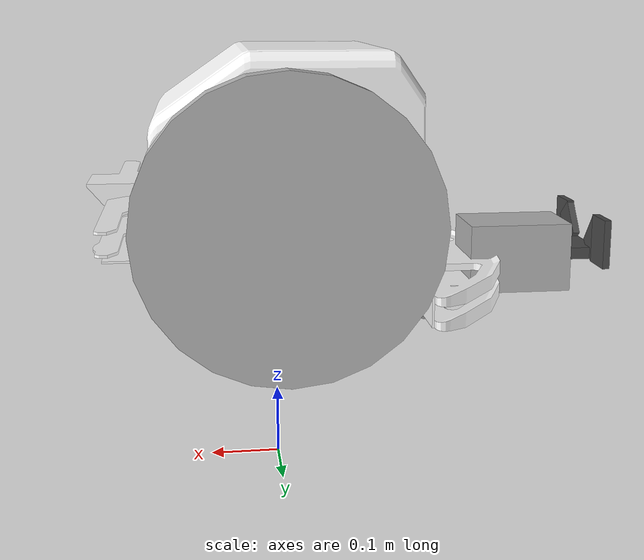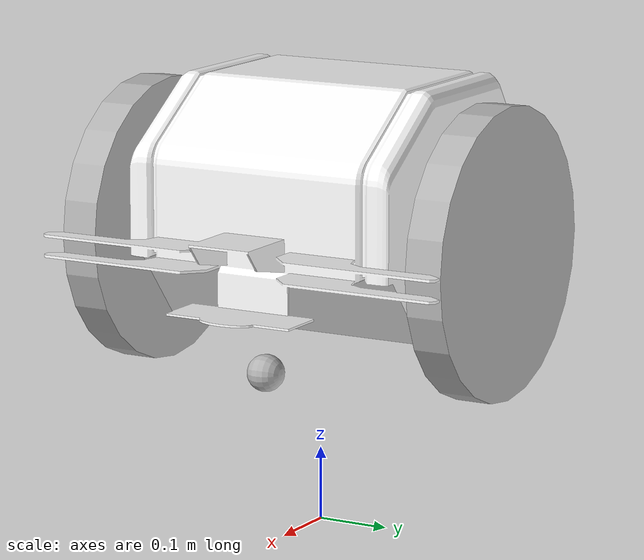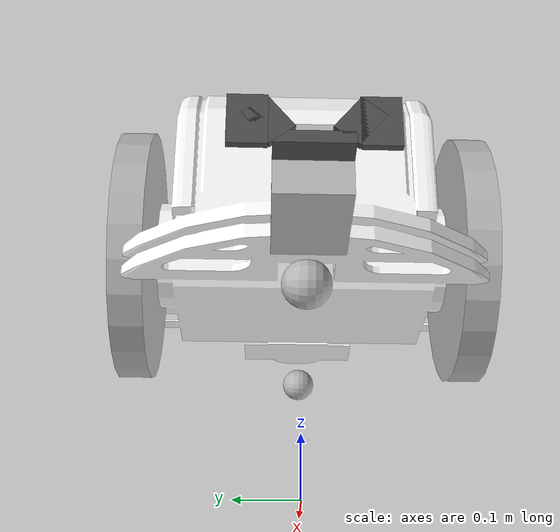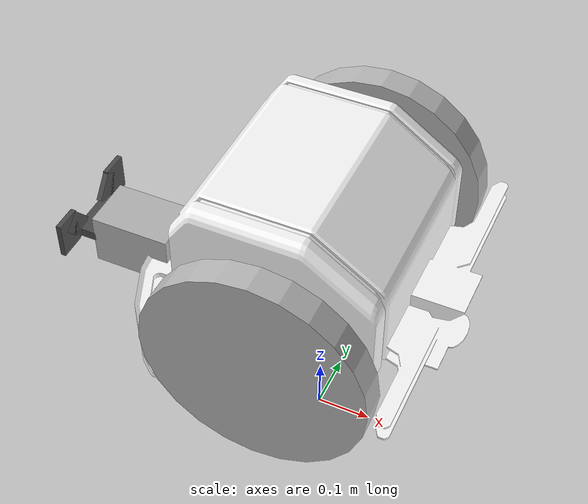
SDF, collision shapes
<?xml version='1.0' encoding='ASCII'?>
<sdf version="1.7">
    <model name="tugbot">
        <self_collide>false</self_collide>
        <pose>0 0 0.2 0 0 0</pose>
        <static>false</static>
        <!-- BASE -->
        <link name="base_link">
            <pose>0 0 0 0 0 0</pose>
            <inertial>
                <pose>-0.1 0 0.1 0 0 0</pose>
                <mass>46.2</mass>
                <inertia>
                    <ixx>1.55925</ixx>
                    <ixy>0</ixy>
                    <ixz>0</ixz>
                    <iyy>1.55925</iyy>
                    <iyz>0</iyz>
                    <izz>1.55925</izz>
                </inertia>
            </inertial>
            <collision name="base_link_collision">
                <pose>0 0 0 0 0 0</pose>
                <geometry>
                    <mesh>
                        <uri>meshes/base/tugbot_simp.stl</uri>
                    </mesh>
                </geometry>
            </collision>
            <visual name="base_link_visual">
                <pose>0 0 0 0 0 0</pose>
                <geometry>
                    <mesh>
                        <uri>meshes/base/tugbot_simp.dae</uri>
                    </mesh>
                </geometry>
            </visual>
            <visual name="movai_logo_visual">
                <pose>0 0 0 0 0 0</pose>
                <geometry>
                    <mesh>
                        <uri>meshes/base/movai_logo.dae</uri>
                    </mesh>
                </geometry>
                <material>
                    <diffuse>1.0 1.0 1.0</diffuse>
                    <pbr>
                        <metal>
                            <albedo_map>meshes/base/movai-logo.png</albedo_map>
                        </metal>
                    </pbr>
                </material>
            </visual>
            <visual name="light_link_visual">
                <pose>-0.1 0 0.1945 0 1.57079632679 0</pose>
                <geometry>
                    <mesh>
                        <scale>1.0 1.0 1.0</scale>
                        <uri>meshes/light_link/light_led.stl</uri>
                    </mesh>
                </geometry>
                <material>
                    <ambient>0.0 0.0 0 1</ambient>
                    <diffuse>0.0 0.0 0 1</diffuse>
                    <specular>0 0 0 1</specular>
                    <emissive>0 1 0 1</emissive>
                </material>
            </visual>
            <visual name="warnign_light_visual">
                <pose>-0.099 0 0.195 0 1.57079632679 0</pose>
                <geometry>
                    <mesh>
                        <scale>1.02 1.02 1.02</scale>
                        <uri>meshes/light_link/light.stl</uri>
                    </mesh>
                </geometry>
                <material>
                    <ambient>0.1 0.05 0 0.5</ambient>
                    <diffuse>1 0.5 0 0.5</diffuse>
                    <specular>1 0.5 0 0.5</specular>
                    <emissive>1 0.5 0 0.5</emissive>
                </material>
            </visual>
        </link>
        <link name="imu_link">
            <pose>0.14 0.02 0.25 0 0 -1.57</pose>
            <sensor name="imu" type="imu">
                <update_rate>30</update_rate>
                <visualize>false</visualize>
            </sensor>
        </link>
        <joint name="imu_link_joint" type="fixed">
            <child>imu_link</child>
            <parent>base_link</parent>
        </joint>
        <link name="warnign_light">
            <pose>-0.185 0 0.46 0 0 0</pose>
            <inertial>
                <pose>0 0 0 0 0 0</pose>
                <mass>0.1</mass>
                <inertia>
                    <ixx>0.000016875</ixx>
                    <ixy>0</ixy>
                    <ixz>0</ixz>
                    <iyy>0.00000001</iyy>
                    <iyz>0</iyz>
                    <izz>0.000016875</izz>
                </inertia>
            </inertial>
            <light name="warnign_light_lamp" type="spot">
                <pose>-0.04 0 0 0 1.57079632679 0</pose>
                <attenuation>
                    <range>5</range>
                    <linear>0</linear>
                    <constant>0.1</constant>
                    <quadratic>0.0025</quadratic>
                </attenuation>
                <diffuse>1 0.5 0 1</diffuse>
                <specular>1 0.5 0 1</specular>
                <spot>
                    <inner_angle>0.9</inner_angle>
                    <outer_angle>1.0</outer_angle>
                    <falloff>2.0</falloff>
                </spot>
                <direction>0 0 -1</direction>
                <cast_shadows>1</cast_shadows>
            </light>
        </link>
        <joint name="warnign_light_joint" type="revolute">
            <child>warnign_light</child>
            <parent>base_link</parent>
            <axis>
                <xyz>0 0 1</xyz>
                <limit>
                    <effort>1000</effort>
                    <velocity>20.0</velocity>
                </limit>
            </axis>
        </joint>
        <!-- SENSORS -->
        <link name="camera_front">
            <pose relative_to="base_link">0.0553 0 0.4323 0 0 0</pose>
            <sensor name="color" type="camera">
                <pose>0 0.0325 0.0125 0 0 0</pose>
                <update_rate>6</update_rate>
                <always_on>0</always_on>
                <camera>
                    <horizontal_fov>1.20427718</horizontal_fov>
                    <image>
                        <width>848</width>
                        <height>480</height>
                    </image>
                    <clip>
                        <near>0.1</near>
                        <far>50</far>
                    </clip>
                    <lens>
                        <intrinsics>
                            <fx>615.9603271484375</fx>
                            <fy>616.227294921875</fy>
                            <cx>419.83026123046875</cx>
                            <cy>245.1431427001953</cy>
                            <s>0</s>
                        </intrinsics>
                    </lens>
                </camera>
            </sensor>
            <sensor name="depth" type="depth_camera">
                <pose>0 0.0175 0.0125 0 0 0</pose>
                <update_rate>6</update_rate>
                <always_on>0</always_on>
                <camera>
                    <horizontal_fov>1.51843645</horizontal_fov>
                    <image>
                        <width>848</width>
                        <height>480</height>
                        <format>R_FLOAT32</format>
                    </image>
                    <clip>
                        <near>0.1</near>
                        <far>10</far>
                    </clip>
                    <lens>
                        <intrinsics>
                            <fx>421.61578369140625</fx>
                            <fy>421.61578369140625</fy>
                            <cx>422.2854309082031</cx>
                            <cy>236.57237243652344</cy>
                            <s>0</s>
                        </intrinsics>
                    </lens>
                </camera>
            </sensor>
        </link>
        <joint name="camera_front_joint" type="fixed">
            <child>camera_front</child>
            <parent>base_link</parent>
        </joint>
        <link name="camera_back">
            <pose relative_to="base_link">-0.241 0 0.2303 0 0 3.141592654</pose>
            <sensor name="color" type="camera">
                <pose>0 0.0325 0.0125 0 0 0</pose>
                <update_rate>6</update_rate>
                <always_on>0</always_on>
                <camera>
                    <horizontal_fov>1.20427718</horizontal_fov>
                    <image>
                        <width>848</width>
                        <height>480</height>
                    </image>
                    <clip>
                        <near>0.1</near>
                        <far>50</far>
                    </clip>
                    <lens>
                        <intrinsics>
                            <fx>615.9603271484375</fx>
                            <fy>616.227294921875</fy>
                            <cx>419.83026123046875</cx>
                            <cy>245.1431427001953</cy>
                            <s>0</s>
                        </intrinsics>
                    </lens>
                </camera>
            </sensor>
            <sensor name="depth" type="depth_camera">
                <pose>0 0.0175 0.0125 0 0 0</pose>
                <update_rate>6</update_rate>
                <always_on>0</always_on>
                <camera>
                    <horizontal_fov>1.51843645</horizontal_fov>
                    <image>
                        <width>848</width>
                        <height>480</height>
                        <format>R_FLOAT32</format>
                    </image>
                    <clip>
                        <near>0.1</near>
                        <far>10</far>
                    </clip>
                    <lens>
                        <intrinsics>
                            <fx>421.61578369140625</fx>
                            <fy>421.61578369140625</fy>
                            <cx>422.2854309082031</cx>
                            <cy>236.57237243652344</cy>
                            <s>0</s>
                        </intrinsics>
                    </lens>
                </camera>
            </sensor>
        </link>
        <joint name="camera_back_joint" type="fixed">
            <child>camera_back</child>
            <parent>base_link</parent>
        </joint>
        <link name="scan_front">
            <pose>0.221 0 0.1404 0 0 0</pose>
            <sensor name="scan_front" type="gpu_lidar">
                <update_rate>10</update_rate>
                <lidar>
                    <scan>
                        <horizontal>
                            <samples>674</samples>
                            <resolution>1</resolution>
                            <min_angle>-1.47043991089</min_angle>
                            <max_angle>1.47043991089</max_angle>
                        </horizontal>
                    </scan>
                    <range>
                        <min>0.01</min>
                        <max>5.0</max>
                        <resolution>0.01</resolution>
                    </range>
                </lidar>
            </sensor>
        </link>
        <joint name="scan_front_joint" type="fixed">
            <child>scan_front</child>
            <parent>base_link</parent>
        </joint>
        <link name="scan_back">
            <pose>-0.2075 0 0.205 0 0 3.141592654</pose>
            <sensor name="scan_back" type="gpu_lidar">
                <update_rate>5</update_rate>
                <lidar>
                    <scan>
                        <horizontal>
                            <samples>480</samples>
                            <resolution>1</resolution>
                            <min_angle>-1.47043991089</min_angle>
                            <max_angle>1.47043991089</max_angle>
                        </horizontal>
                    </scan>
                    <range>
                        <min>0.01</min>
                        <max>5.0</max>
                        <resolution>0.01</resolution>
                    </range>
                </lidar>
            </sensor>
        </link>
        <joint name="scan_back_joint" type="fixed">
            <child>scan_back</child>
            <parent>base_link</parent>
        </joint>
        <link name="scan_omni">
            <pose>-0.1855 0 0.5318 0 0 0</pose>
            <visual name="velodyne_base">
                <pose>0 0 -0.035 0 0 0</pose>
                <geometry>
                    <cylinder>
                        <radius>0.06</radius>
                        <length>0.0015</length>
                    </cylinder>
                </geometry>
            </visual>
            <visual name="velodyne_suport_1">
                <pose>-0.035 0.035 -0.08 0 0 0</pose>
                <geometry>
                    <cylinder>
                        <radius>0.005</radius>
                        <length>0.09</length>
                    </cylinder>
                </geometry>
            </visual>
            <visual name="velodyne_suport_2">
                <pose>-0.035 -0.035 -0.08 0 0 0</pose>
                <geometry>
                    <cylinder>
                        <radius>0.005</radius>
                        <length>0.09</length>
                    </cylinder>
                </geometry>
            </visual>
            <visual name="velodyne_suport_3">
                <pose>0.0495 0 -0.08 0 0 0</pose>
                <geometry>
                    <cylinder>
                        <radius>0.005</radius>
                        <length>0.09</length>
                    </cylinder>
                </geometry>
            </visual>
            <!-- Bottom cylinder of Ouster/Velodyne 3D Lidar -->
            <visual name="velodyne_base_link_visual_base">
                <pose>0 0 -0.035 0 0 0</pose>
                <geometry>
                    <mesh>
                        <scale>1 1 1</scale>
                        <uri>meshes/VLP16_base_1.dae</uri>
                    </mesh>
                </geometry>
            </visual>
            <!-- Top cylinder of Ouster/Velodyne 3D Lidar -->
            <visual name="velodyne_base_link_visual_sensor">
                <pose>0 0 -0.035 0 0 0</pose>
                <geometry>
                    <mesh>
                        <scale>1 1 1</scale>
                        <uri>meshes/VLP16_base_2.dae</uri>
                    </mesh>
                </geometry>
            </visual>
            <!-- Main cylinder of Ouster/Velodyne 3D Lidar -->
            <visual name="base_link_velodyne_visual_scan">
                <pose>0 0 -0.035 0 0 0</pose>
                <geometry>
                    <mesh>
                        <scale>1 1 1</scale>
                        <uri>meshes/VLP16_scan.dae</uri>
                    </mesh>
                </geometry>
            </visual>
            <sensor name="scan_omni" type="gpu_lidar">
                <update_rate>10</update_rate>
                <lidar>
                    <scan>
                        <horizontal>
                            <!-- Real samples value is 1800 -->
                            <samples>900</samples>
                            <resolution>1</resolution>
                            <min_angle>-3.141592654</min_angle>
                            <max_angle>3.141592654</max_angle>
                        </horizontal>
                        <vertical>
                            <samples>16</samples>
                            <resolution>1</resolution>
                            <min_angle>-0.261799388</min_angle>
                            <max_angle>0.261799388</max_angle>
                        </vertical>
                    </scan>
                    <range>
                        <min>0.2</min>
                        <max>100.0</max>
                        <resolution>0.01</resolution>
                    </range>
                </lidar>
            </sensor>
        </link>
        <joint name="scan_omni_joint" type="fixed">
            <child>scan_omni</child>
            <parent>base_link</parent>
        </joint>
        <!-- GRIPPER -->
        <link name="gripper">
            <pose>-0.35 0 0.1 0 0 0</pose>
            <inertial>
                <pose>0 0 0 0 -0 0</pose>
                <mass>1</mass>
                <inertia>
                    <ixx>0.001666667</ixx>
                    <ixy>0</ixy>
                    <ixz>0</ixz>
                    <iyy>0.001666667</iyy>
                    <iyz>0</iyz>
                    <izz>0.001666667</izz>
                </inertia>
            </inertial>
            <collision name="gripper_collision">
                <pose>-0.005 0 0 0 -0 0</pose>
                <max_contacts>5</max_contacts>
                <geometry>
                    <box>
                        <size>0.15 0.1 0.1</size>
                    </box>
                </geometry>
                <surface>
                    <contact>
                        <ode>
                            <kp>1000000.0</kp>
                            <kd>1</kd>
                            <min_depth>0.01</min_depth>
                            <max_vel>1</max_vel>
                        </ode>
                    </contact>
                    <friction>
                        <ode>
                            <mu>1.16</mu>
                            <mu2>1.16</mu2>
                        </ode>
                    </friction>
                </surface>
            </collision>
            <visual name="gripper_visual">
                <pose>0 0 0 -1.57079632679 0 0</pose>
                <geometry>
                    <mesh>
                        <scale>1 1 1</scale>
                        <uri>meshes/gripper2/gripper2.dae</uri>
                    </mesh>
                </geometry>
            </visual>
            <sensor name="sensor_contact" type="gpu_lidar">
                <pose>-0.075 0 0.035 0 0 3.141592654</pose>
                <update_rate>10</update_rate>
                <lidar>
                    <scan>
                        <horizontal>
                            <samples>3</samples>
                            <resolution>1</resolution>
                            <min_angle>-0.02</min_angle>
                            <max_angle>0.02</max_angle>
                        </horizontal>
                    </scan>
                    <range>
                        <min>0.001</min>
                        <max>0.01</max>
                        <resolution>0.001</resolution>
                    </range>
                </lidar>
            </sensor>
        </link>
        <joint name="gripper_joint" type="revolute">
            <pose>0.35 0 0.09 0 0 0</pose>
            <child>gripper</child>
            <parent>base_link</parent>
            <axis>
                <xyz>0 0 1</xyz>
                <limit>
                    <lower>-0.7</lower>
                    <upper>0.7</upper>
                    <effort>4</effort>
                    <velocity>0.5</velocity>
                </limit>
                <dynamics>
                    <friction>0.5</friction>
                </dynamics>
            </axis>
        </joint>
        <link name="gripper_hand">
            <pose>-0.463 0 0.1 0 0 0</pose>
            <inertial>
                <pose>0 0 0 0 0 0</pose>
                <mass>0.2</mass>
                <inertia>
                    <ixx>0.000016</ixx>
                    <ixy>0</ixy>
                    <ixz>0</ixz>
                    <iyy>0.000016</iyy>
                    <iyz>0</iyz>
                    <izz>0.000016</izz>
                </inertia>
            </inertial>
            <collision name="gripper_hand_collision">
                <pose>0.015 0 0.006 0 0 0</pose>
                <geometry>
                    <box>
                        <size>0.04 0.1 0.017</size>
                    </box>
                </geometry>
                <max_contacts>5</max_contacts>
                <surface>
                    <contact>
                        <ode>
                            <kp>1000000.0</kp>
                            <kd>1</kd>
                            <min_depth>0.01</min_depth>
                            <max_vel>1</max_vel>
                        </ode>
                    </contact>
                    <friction>
                        <ode>
                            <mu>1.16</mu>
                            <mu2>1.16</mu2>
                        </ode>
                    </friction>
                </surface>
            </collision>
            <visual name="gripper_hand_visual">
                <pose>0 0 0 1.570796327 0 1.570796327</pose>
                <geometry>
                    <mesh>
                        <scale>0.001 0.001 0.001</scale>
                        <uri>meshes/gripper2/gripper_hand.stl</uri>
                    </mesh>
                </geometry>
                <material>
                    <ambient>0.1 0.1 0.1 1</ambient>
                    <diffuse>0.3 0.3 0.3 1</diffuse>
                    <specular>1 1 1 1</specular>
                    <emissive>0 0 0 1</emissive>
                </material>
            </visual>
            <collision name="gripper_hand_sideL_collision">
                <pose>0 0.08 0.03 0 0 0</pose>
                <geometry>
                    <box>
                        <size>0.01 0.05 0.07</size>
                    </box>
                </geometry>
                <surface>
                    <contact>
                        <ode>
                            <kp>1000000.0</kp>
                            <kd>1</kd>
                            <min_depth>0.01</min_depth>
                            <max_vel>1</max_vel>
                        </ode>
                    </contact>
                    <friction>
                        <ode>
                            <mu>1.16</mu>
                            <mu2>1.16</mu2>
                        </ode>
                    </friction>
                </surface>
            </collision>
            <collision name="gripper_hand_sideL_slide_collision">
                <pose>0 0.055 0.03 0.9 0 0</pose>
                <geometry>
                    <box>
                        <size>0.01 0.055 0.04</size>
                    </box>
                </geometry>
                <surface>
                    <contact>
                        <ode>
                            <kp>1000000.0</kp>
                            <kd>1</kd>
                            <min_depth>0.01</min_depth>
                            <max_vel>1</max_vel>
                        </ode>
                    </contact>
                    <friction>
                        <ode>
                            <mu>0</mu>
                            <mu2>0</mu2>
                        </ode>
                    </friction>
                </surface>
            </collision>
            <collision name="gripper_hand_sideR_collision">
                <pose>0 -0.08 0.03 0 0 0</pose>
                <geometry>
                    <box>
                        <size>0.01 0.05 0.07</size>
                    </box>
                </geometry>
                <surface>
                    <contact>
                        <ode>
                            <kp>1000000.0</kp>
                            <kd>1</kd>
                            <min_depth>0.01</min_depth>
                            <max_vel>1</max_vel>
                        </ode>
                    </contact>
                    <friction>
                        <ode>
                            <mu>1.16</mu>
                            <mu2>1.16</mu2>
                        </ode>
                    </friction>
                </surface>
            </collision>
            <collision name="gripper_hand_sideR_slide_collision">
                <pose>0 -0.055 0.03 -0.9 0 0</pose>
                <geometry>
                    <box>
                        <size>0.01 0.055 0.04</size>
                    </box>
                </geometry>
                <surface>
                    <contact>
                        <ode>
                            <kp>1000000.0</kp>
                            <kd>1</kd>
                            <min_depth>0.01</min_depth>
                            <max_vel>1</max_vel>
                        </ode>
                    </contact>
                    <friction>
                        <ode>
                            <mu>0</mu>
                            <mu2>0</mu2>
                        </ode>
                    </friction>
                </surface>
            </collision>
        </link>
        <joint name="gripper_hand_joint" type="revolute">
            <pose>0.2 0 0 0 0 0</pose>
            <child>gripper_hand</child>
            <parent>gripper</parent>
            <axis>
                <xyz>0 1 0</xyz>
                <limit>
                    <lower>-0.35</lower>
                    <upper>0.1</upper>
                    <effort>100</effort>
                    <velocity>0.5</velocity>
                </limit>
            </axis>
        </joint>
        <!-- WHEELS -->
        <link name="wheel_front">
            <pose>0.145 0 0.0345 1.570796327 0 0</pose>
            <inertial>
                <pose>0 0 0 0 0 0</pose>
                <mass>0.1</mass>
                <inertia>
                    <ixx>0.0000175</ixx>
                    <ixy>0</ixy>
                    <ixz>0</ixz>
                    <iyy>0.0000175</iyy>
                    <iyz>0</iyz>
                    <izz>0.0000175</izz>
                </inertia>
            </inertial>
            <collision name="wheel_front_collision">
                <pose>0 0 0 0 0 0</pose>
                <geometry>
                    <sphere>
                        <radius>0.025</radius>
                    </sphere>
                </geometry>
                <max_contacts>2</max_contacts>
                <surface>
                    <contact>
                        <ode>
                            <kp>1000000.0</kp>
                            <kd>1</kd>
                            <min_depth>0.01</min_depth>
                            <max_vel>1</max_vel>
                        </ode>
                    </contact>
                    <friction>
                        <ode>
                            <mu>1.16</mu>
                            <mu2>1.16</mu2>
                        </ode>
                    </friction>
                </surface>
            </collision>
        </link>
        <joint name="wheel_front_joint" type="ball">
            <child>wheel_front</child>
            <parent>base_link</parent>
            <axis>
                <limit>
                    <effort>100</effort>
                </limit>
                <dynamics>
                    <spring_reference>0</spring_reference>
                    <spring_stiffness>0</spring_stiffness>
                    <damping>10</damping>
                </dynamics>
            </axis>
        </joint>
        <link name="wheel_back">
            <pose>-0.225 0 0.035 1.570796327 0 0</pose>
            <inertial>
                <pose>0 0 0 0 0 0</pose>
                <mass>0.1</mass>
                <inertia>
                    <ixx>0.0000175</ixx>
                    <ixy>0</ixy>
                    <ixz>0</ixz>
                    <iyy>0.0000175</iyy>
                    <iyz>0</iyz>
                    <izz>0.0000175</izz>
                </inertia>
            </inertial>
            <collision name="wheel_back_collision">
                <pose>0 0 0 0 0 0</pose>
                <geometry>
                    <sphere>
                        <radius>0.035</radius>
                    </sphere>
                </geometry>
                <max_contacts>2</max_contacts>
                <surface>
                    <contact>
                        <ode>
                            <kp>1000000.0</kp>
                            <kd>1</kd>
                            <min_depth>0.01</min_depth>
                            <max_vel>1</max_vel>
                        </ode>
                    </contact>
                    <friction>
                        <ode>
                            <mu>1.16</mu>
                            <mu2>1.16</mu2>
                        </ode>
                    </friction>
                </surface>
            </collision>
        </link>
        <joint name="wheel_back_joint" type="ball">
            <child>wheel_back</child>
            <parent>base_link</parent>
            <axis>
                <limit>
                    <effort>100</effort>
                </limit>
                <dynamics>
                    <spring_reference>0</spring_reference>
                    <spring_stiffness>0</spring_stiffness>
                    <damping>10</damping>
                </dynamics>
            </axis>
        </joint>
        <link name="wheel_left">
            <pose>0 0.257 0.195 -1.570796327 0 0</pose>
            <inertial>
                <pose>0 0 0 0 0 0</pose>
                <mass>0.1</mass>
                <inertia>
                    <ixx>0.0000175</ixx>
                    <ixy>0</ixy>
                    <ixz>0</ixz>
                    <iyy>0.0000175</iyy>
                    <iyz>0</iyz>
                    <izz>0.00003125</izz>
                </inertia>
            </inertial>
            <collision name="wheel_left_collision">
                <pose>0 0 0 0 0 0</pose>
                <geometry>
                    <cylinder>
                        <radius>0.195</radius>
                        <length>0.05</length>
                    </cylinder>
                </geometry>
                <max_contacts>5</max_contacts>
                <surface>
                    <contact>
                        <ode>
                            <kp>1000000.0</kp>
                            <kd>1</kd>
                            <min_depth>0.01</min_depth>
                            <max_vel>1</max_vel>
                        </ode>
                    </contact>
                    <friction>
                        <ode>
                            <mu>1.16</mu>
                            <mu2>10</mu2>
                            <fdir1>1 0 0</fdir1>
                        </ode>
                    </friction>
                </surface>
            </collision>
            <visual name="wheel_left_visual">
                <pose>0 0 -0.03 0 0 0</pose>
                <geometry>
                    <mesh>
                        <scale>0.98 0.98 1.0</scale>
                        <uri>meshes/wheel/wheel.dae</uri>
                    </mesh>
                </geometry>
            </visual>
        </link>
        <joint name="wheel_left_joint" type="revolute">
            <child>wheel_left</child>
            <parent>base_link</parent>
            <axis>
                <xyz>0 0 1</xyz>
                <limit>
                    <effort>9.6</effort>
                </limit>
                <dynamics>
                    <damping>3.0</damping>
                    <friction>0.5</friction>
                </dynamics>
            </axis>
        </joint>
        <link name="wheel_right">
            <pose>0 -0.257 0.195 1.570796327 0 0</pose>
            <inertial>
                <pose>0 0 0 0 0 0</pose>
                <mass>0.1</mass>
                <inertia>
                    <ixx>0.0000175</ixx>
                    <ixy>0</ixy>
                    <ixz>0</ixz>
                    <iyy>0.0000175</iyy>
                    <iyz>0</iyz>
                    <izz>0.00003125</izz>
                </inertia>
            </inertial>
            <collision name="wheel_right_collision">
                <pose>0 0 0 0 0 0</pose>
                <geometry>
                    <cylinder>
                        <radius>0.195</radius>
                        <length>0.05</length>
                    </cylinder>
                </geometry>
                <max_contacts>5</max_contacts>
                <surface>
                    <contact>
                        <ode>
                            <kp>1000000.0</kp>
                            <kd>1</kd>
                            <min_depth>0.01</min_depth>
                            <max_vel>1</max_vel>
                        </ode>
                    </contact>
                    <friction>
                        <ode>
                            <mu>1.16</mu>
                            <mu2>10</mu2>
                            <fdir1>1 0 0</fdir1>
                        </ode>
                    </friction>
                </surface>
            </collision>
            <visual name="wheel_right_visual">
                <pose>0 0 -0.03 0 0 0</pose>
                <geometry>
                    <mesh>
                        <scale>0.98 0.98 1.0</scale>
                        <uri>meshes/wheel/wheel.dae</uri>
                    </mesh>
                </geometry>
            </visual>
        </link>
        <joint name="wheel_right_joint" type="revolute">
            <child>wheel_right</child>
            <parent>base_link</parent>
            <axis>
                <xyz>0 0 -1</xyz>
                <limit>
                    <effort>9.6</effort>
                </limit>
                <dynamics>
                    <damping>3.0</damping>
                    <friction>0.5</friction>
                </dynamics>
            </axis>
        </joint>
        <!-- CONTROLERS PLUGINS -->
        <!-- DIFF DRIVE PLUGIN / WHEELS CONTROLER -->
        <plugin filename="ignition-gazebo-diff-drive-system" name="ignition::gazebo::systems::DiffDrive">
            <left_joint>wheel_left_joint</left_joint>
            <right_joint>wheel_right_joint</right_joint>
            <wheel_separation>0.5605</wheel_separation>
            <wheel_radius>0.195</wheel_radius>
            <odom_publish_frequency>20</odom_publish_frequency>
            <frame_id>odom</frame_id>
            <child_frame_id>base_link</child_frame_id>
        </plugin>
        <!-- GRIPPER RAIL CONTROLER -->
        <plugin filename="ignition-gazebo-joint-controller-system" name="ignition::gazebo::systems::JointController">
            <joint_name>gripper_joint</joint_name>
            <use_force_commands>true</use_force_commands>
            <p_gain>0.2</p_gain>
            <i_gain>0.01</i_gain>
        </plugin>
        <!-- GRIPPER ATTACH CONTROLER -->
        <plugin filename="ignition-gazebo-joint-controller-system" name="ignition::gazebo::systems::JointController">
            <joint_name>gripper_hand_joint</joint_name>
            <use_force_commands>true</use_force_commands>
            <p_gain>0.2</p_gain>
            <i_gain>0.01</i_gain>
        </plugin>
        <!-- GROUND ODOMETRY POSITION STATE PUBLISHER (FAKE LOCALIZATION) -->
        <plugin filename="ignition-gazebo-pose-publisher-system" name="ignition::gazebo::systems::PosePublisher">
            <publish_link_pose>true</publish_link_pose>
            <publish_collision_pose>false</publish_collision_pose>
            <publish_visual_pose>false</publish_visual_pose>
            <publish_sensor_pose>false</publish_sensor_pose>
            <publish_nested_model_pose>true</publish_nested_model_pose>
            <update_frequency>20</update_frequency>
        </plugin>
        <plugin filename="ignition-gazebo-joint-controller-system" name="ignition::gazebo::systems::JointController">
            <joint_name>warnign_light_joint</joint_name>
            <initial_velocity>10.0</initial_velocity>
        </plugin>
        <plugin filename="ignition-gazebo-linearbatteryplugin-system" name="ignition::gazebo::systems::LinearBatteryPlugin">
            <battery_name>linear_battery</battery_name>
            <voltage>24.592</voltage>
            <open_circuit_voltage_constant_coef>24.592</open_circuit_voltage_constant_coef>
            <capacity>1.2009</capacity>
            <power_load>6.5</power_load>
            <fix_issue_225>true</fix_issue_225>
            <enable_recharge>true</enable_recharge>
            <!-- charging I = c / t, discharging I = P / V,
          charging I should be > discharging I -->
            <charging_time>3.0</charging_time>
            <!-- Consumer-specific -->
            <recharge_by_topic>true</recharge_by_topic>
        </plugin>
        <plugin filename="ignition-gazebo-joint-state-publisher-system" name="ignition::gazebo::systems::JointStatePublisher">
            <joint_name>gripper_joint</joint_name>
            <joint_name>gripper_hand_joint</joint_name>
        </plugin>
    </model>
</sdf>
